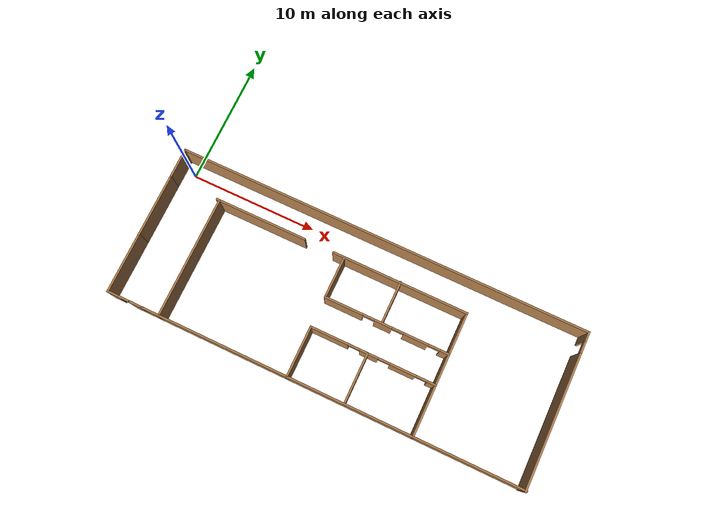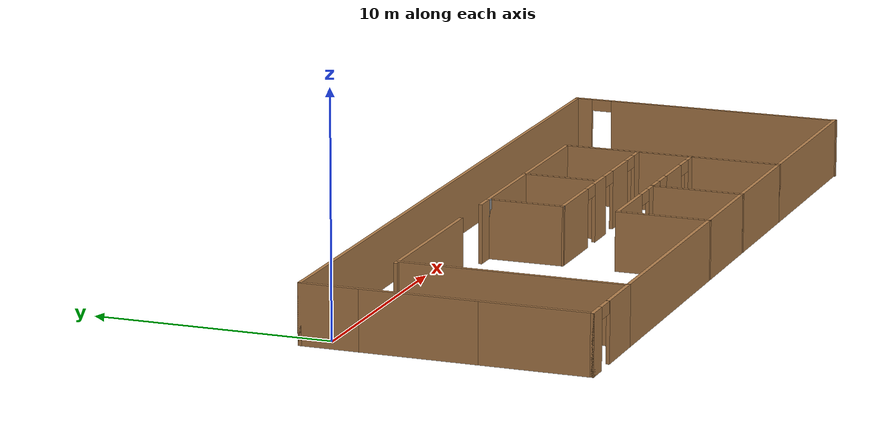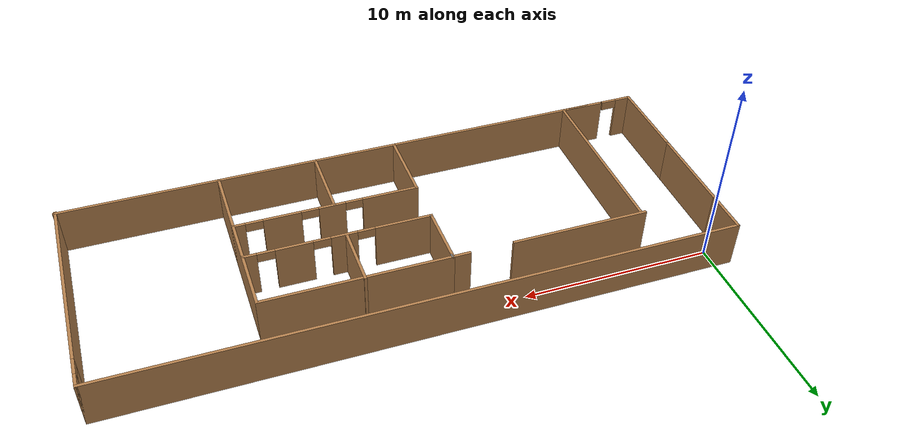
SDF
<?xml version='1.0'?>
<sdf version='1.7'>
  <model name='restaurant'>
    <pose>15.2138 -4.96934 0 0 -0 0</pose>
    <link name='Wall_100'>
      <collision name='Wall_100_Collision'>
        <geometry>
          <box>
            <size>32.25 0.15 2.5</size>
          </box>
        </geometry>
        <pose>0 0 1.25 0 -0 0</pose>
      </collision>
      <visual name='Wall_100_Visual'>
        <pose>0 0 1.25 0 -0 0</pose>
        <geometry>
          <box>
            <size>32.25 0.15 2.5</size>
          </box>
        </geometry>
        <material>
          <script>
            <uri>file://media/materials/scripts/gazebo.material</uri>
            <name>Gazebo/Wood</name>
          </script>
          <ambient>1 1 1 1</ambient>
        </material>
        <meta>
          <layer>0</layer>
        </meta>
      </visual>
      <pose>-0.024999 5.925 0 0 -0 0</pose>
    </link>
    <link name='Wall_101'>
      <pose>16.025 -0 0 0 -0 -1.5708</pose>
      <visual name='Wall_101_Visual_0'>
        <pose>-5.61096 0 1.25 0 -0 0</pose>
        <geometry>
          <box>
            <size>0.77808 0.15 2.5</size>
          </box>
        </geometry>
        <material>
          <script>
            <uri>file://media/materials/scripts/gazebo.material</uri>
            <name>Gazebo/Wood</name>
          </script>
          <ambient>1 1 1 1</ambient>
        </material>
        <meta>
          <layer>0</layer>
        </meta>
      </visual>
      <collision name='Wall_101_Collision_0'>
        <geometry>
          <box>
            <size>0.77808 0.15 2.5</size>
          </box>
        </geometry>
        <pose>-5.61096 0 1.25 0 -0 0</pose>
      </collision>
      <visual name='Wall_101_Visual_1'>
        <pose>0.83904 0 1.25 0 -0 0</pose>
        <geometry>
          <box>
            <size>10.3219 0.15 2.5</size>
          </box>
        </geometry>
        <material>
          <script>
            <uri>file://media/materials/scripts/gazebo.material</uri>
            <name>Gazebo/Wood</name>
          </script>
          <ambient>1 1 1 1</ambient>
        </material>
        <meta>
          <layer>0</layer>
        </meta>
      </visual>
      <collision name='Wall_101_Collision_1'>
        <geometry>
          <box>
            <size>10.3219 0.15 2.5</size>
          </box>
        </geometry>
        <pose>0.83904 0 1.25 0 -0 0</pose>
      </collision>
      <visual name='Wall_101_Visual_2'>
        <pose>-4.77192 0 2.25 0 -0 0</pose>
        <geometry>
          <box>
            <size>0.9 0.15 0.5</size>
          </box>
        </geometry>
        <material>
          <script>
            <uri>file://media/materials/scripts/gazebo.material</uri>
            <name>Gazebo/Wood</name>
          </script>
          <ambient>1 1 1 1</ambient>
        </material>
        <meta>
          <layer>0</layer>
        </meta>
      </visual>
      <collision name='Wall_101_Collision_2'>
        <geometry>
          <box>
            <size>0.9 0.15 0.5</size>
          </box>
        </geometry>
        <pose>-4.77192 0 2.25 0 -0 0</pose>
      </collision>
    </link>
    <link name='Wall_17'>
      <collision name='Wall_17_Collision'>
        <geometry>
          <box>
            <size>2.5 0.15 2.5</size>
          </box>
        </geometry>
        <pose>0 0 1.25 0 -0 0</pose>
      </collision>
      <visual name='Wall_17_Visual'>
        <pose>0 0 1.25 0 -0 0</pose>
        <geometry>
          <box>
            <size>2.5 0.15 2.5</size>
          </box>
        </geometry>
        <material>
          <script>
            <uri>file://media/materials/scripts/gazebo.material</uri>
            <name>Gazebo/Wood</name>
          </script>
          <ambient>1 1 1 1</ambient>
        </material>
        <meta>
          <layer>0</layer>
        </meta>
      </visual>
      <pose>-16.075 4.75 0 0 -0 -1.5708</pose>
    </link>
    <link name='Wall_23'>
      <collision name='Wall_23_Collision'>
        <geometry>
          <box>
            <size>5 0.15 2.5</size>
          </box>
        </geometry>
        <pose>0 0 1.25 0 -0 0</pose>
      </collision>
      <visual name='Wall_23_Visual'>
        <pose>0 0 1.25 0 -0 0</pose>
        <geometry>
          <box>
            <size>5 0.15 2.5</size>
          </box>
        </geometry>
        <material>
          <script>
            <uri>file://media/materials/scripts/gazebo.material</uri>
            <name>Gazebo/Wood</name>
          </script>
          <ambient>1 1 1 1</ambient>
        </material>
        <meta>
          <layer>0</layer>
        </meta>
      </visual>
      <pose>-16.075 1.15 0 0 -0 -1.5708</pose>
    </link>
    <link name='Wall_25'>
      <collision name='Wall_25_Collision'>
        <geometry>
          <box>
            <size>4.75 0.15 2.5</size>
          </box>
        </geometry>
        <pose>0 0 1.25 0 -0 0</pose>
      </collision>
      <visual name='Wall_25_Visual'>
        <pose>0 0 1.25 0 -0 0</pose>
        <geometry>
          <box>
            <size>4.75 0.15 2.5</size>
          </box>
        </geometry>
        <material>
          <script>
            <uri>file://media/materials/scripts/gazebo.material</uri>
            <name>Gazebo/Wood</name>
          </script>
          <ambient>1 1 1 1</ambient>
        </material>
        <meta>
          <layer>0</layer>
        </meta>
      </visual>
      <pose>-16.075 -3.575 0 0 -0 -1.5708</pose>
    </link>
    <link name='Wall_27'>
      <pose>-14.025 -5.875 0 0 -0 0</pose>
      <visual name='Wall_27_Visual_0'>
        <pose>-1.66236 0 1.25 0 -0 0</pose>
        <geometry>
          <box>
            <size>0.925291 0.15 2.5</size>
          </box>
        </geometry>
        <material>
          <script>
            <uri>file://media/materials/scripts/gazebo.material</uri>
            <name>Gazebo/Wood</name>
          </script>
          <ambient>1 1 1 1</ambient>
        </material>
        <meta>
          <layer>0</layer>
        </meta>
      </visual>
      <collision name='Wall_27_Collision_0'>
        <geometry>
          <box>
            <size>0.925291 0.15 2.5</size>
          </box>
        </geometry>
        <pose>-1.66236 0 1.25 0 -0 0</pose>
      </collision>
      <visual name='Wall_27_Visual_1'>
        <pose>0.912645 0 1.25 0 -0 0</pose>
        <geometry>
          <box>
            <size>2.42471 0.15 2.5</size>
          </box>
        </geometry>
        <material>
          <script>
            <uri>file://media/materials/scripts/gazebo.material</uri>
            <name>Gazebo/Wood</name>
          </script>
          <ambient>1 1 1 1</ambient>
        </material>
        <meta>
          <layer>0</layer>
        </meta>
      </visual>
      <collision name='Wall_27_Collision_1'>
        <geometry>
          <box>
            <size>2.42471 0.15 2.5</size>
          </box>
        </geometry>
        <pose>0.912645 0 1.25 0 -0 0</pose>
      </collision>
      <visual name='Wall_27_Visual_2'>
        <pose>1.33783 0 1.25 0 -0 0</pose>
        <geometry>
          <box>
            <size>1.57435 0.15 2.5</size>
          </box>
        </geometry>
        <material>
          <script>
            <uri>file://media/materials/scripts/gazebo.material</uri>
            <name>Gazebo/Wood</name>
          </script>
          <ambient>1 1 1 1</ambient>
        </material>
        <meta>
          <layer>0</layer>
        </meta>
      </visual>
      <collision name='Wall_27_Collision_2'>
        <geometry>
          <box>
            <size>1.57435 0.15 2.5</size>
          </box>
        </geometry>
        <pose>1.33783 0 1.25 0 -0 0</pose>
      </collision>
      <visual name='Wall_27_Visual_3'>
        <pose>-0.774528 0 2.25 0 -0 0</pose>
        <geometry>
          <box>
            <size>0.850362 0.15 0.5</size>
          </box>
        </geometry>
        <material>
          <script>
            <uri>file://media/materials/scripts/gazebo.material</uri>
            <name>Gazebo/Wood</name>
          </script>
          <ambient>1 1 1 1</ambient>
        </material>
        <meta>
          <layer>0</layer>
        </meta>
      </visual>
      <collision name='Wall_27_Collision_3'>
        <geometry>
          <box>
            <size>0.850362 0.15 0.5</size>
          </box>
        </geometry>
        <pose>-0.774528 0 2.25 0 -0 0</pose>
      </collision>
    </link>
    <link name='Wall_28'>
      <collision name='Wall_28_Collision'>
        <geometry>
          <box>
            <size>9.5 0.15 2.5</size>
          </box>
        </geometry>
        <pose>0 0 1.25 0 -0 0</pose>
      </collision>
      <visual name='Wall_28_Visual'>
        <pose>0 0 1.25 0 -0 0</pose>
        <geometry>
          <box>
            <size>9.5 0.15 2.5</size>
          </box>
        </geometry>
        <material>
          <script>
            <uri>file://media/materials/scripts/gazebo.material</uri>
            <name>Gazebo/Wood</name>
          </script>
          <ambient>1 1 1 1</ambient>
        </material>
        <meta>
          <layer>0</layer>
        </meta>
      </visual>
      <pose>-11.975 -1.2 0 0 -0 1.5708</pose>
    </link>
    <link name='Wall_30'>
      <collision name='Wall_30_Collision'>
        <geometry>
          <box>
            <size>10.25 0.15 2.5</size>
          </box>
        </geometry>
        <pose>0 0 1.25 0 -0 0</pose>
      </collision>
      <visual name='Wall_30_Visual'>
        <pose>0 0 1.25 0 -0 0</pose>
        <geometry>
          <box>
            <size>10.25 0.15 2.5</size>
          </box>
        </geometry>
        <material>
          <script>
            <uri>file://media/materials/scripts/gazebo.material</uri>
            <name>Gazebo/Wood</name>
          </script>
          <ambient>1 1 1 1</ambient>
        </material>
        <meta>
          <layer>0</layer>
        </meta>
      </visual>
      <pose>-6.925 -5.875 0 0 -0 0</pose>
    </link>
    <link name='Wall_31'>
      <collision name='Wall_31_Collision'>
        <geometry>
          <box>
            <size>4 0.15 2.5</size>
          </box>
        </geometry>
        <pose>0 0 1.25 0 -0 0</pose>
      </collision>
      <visual name='Wall_31_Visual'>
        <pose>0 0 1.25 0 -0 0</pose>
        <geometry>
          <box>
            <size>4 0.15 2.5</size>
          </box>
        </geometry>
        <material>
          <script>
            <uri>file://media/materials/scripts/gazebo.material</uri>
            <name>Gazebo/Wood</name>
          </script>
          <ambient>1 1 1 1</ambient>
        </material>
        <meta>
          <layer>0</layer>
        </meta>
      </visual>
      <pose>-1.875 -3.95 0 0 -0 1.5708</pose>
    </link>
    <link name='Wall_33'>
      <collision name='Wall_33_Collision'>
        <geometry>
          <box>
            <size>0.15 0.15 2.5</size>
          </box>
        </geometry>
        <pose>0 0 1.25 0 -0 0</pose>
      </collision>
      <visual name='Wall_33_Visual'>
        <pose>0 0 1.25 0 -0 0</pose>
        <geometry>
          <box>
            <size>0.15 0.15 2.5</size>
          </box>
        </geometry>
        <material>
          <script>
            <uri>file://media/materials/scripts/gazebo.material</uri>
            <name>Gazebo/Grey</name>
          </script>
          <ambient>1 1 1 1</ambient>
        </material>
        <meta>
          <layer>0</layer>
        </meta>
      </visual>
      <pose>-1.875 0.325 0 0 -0 0</pose>
    </link>
    <link name='Wall_34'>
      <collision name='Wall_34_Collision'>
        <geometry>
          <box>
            <size>3.25 0.15 2.5</size>
          </box>
        </geometry>
        <pose>0 0 1.25 0 -0 0</pose>
      </collision>
      <visual name='Wall_34_Visual'>
        <pose>0 0 1.25 0 -0 0</pose>
        <geometry>
          <box>
            <size>3.25 0.15 2.5</size>
          </box>
        </geometry>
        <material>
          <script>
            <uri>file://media/materials/scripts/gazebo.material</uri>
            <name>Gazebo/Wood</name>
          </script>
          <ambient>1 1 1 1</ambient>
        </material>
        <meta>
          <layer>0</layer>
        </meta>
      </visual>
      <pose>-1.875 1.875 0 0 -0 1.5708</pose>
    </link>
    <link name='Wall_35'>
      <collision name='Wall_35_Collision'>
        <geometry>
          <box>
            <size>0.25 0.15 2.5</size>
          </box>
        </geometry>
        <pose>0 0 1.25 0 -0 0</pose>
      </collision>
      <visual name='Wall_35_Visual'>
        <pose>0 0 1.25 0 -0 0</pose>
        <geometry>
          <box>
            <size>0.25 0.15 2.5</size>
          </box>
        </geometry>
        <material>
          <script>
            <uri>file://media/materials/scripts/gazebo.material</uri>
            <name>Gazebo/Grey</name>
          </script>
          <ambient>1 1 1 1</ambient>
        </material>
        <meta>
          <layer>0</layer>
        </meta>
      </visual>
      <pose>-1.875 3.475 0 0 -0 1.5708</pose>
    </link>
    <link name='Wall_36'>
      <collision name='Wall_36_Collision'>
        <geometry>
          <box>
            <size>1 0.15 2.5</size>
          </box>
        </geometry>
        <pose>0 0 1.25 0 -0 0</pose>
      </collision>
      <visual name='Wall_36_Visual'>
        <pose>0 0 1.25 0 -0 0</pose>
        <geometry>
          <box>
            <size>1 0.15 2.5</size>
          </box>
        </geometry>
        <material>
          <script>
            <uri>file://media/materials/scripts/gazebo.material</uri>
            <name>Gazebo/Wood</name>
          </script>
          <ambient>1 1 1 1</ambient>
        </material>
        <meta>
          <layer>0</layer>
        </meta>
      </visual>
      <pose>-2.3 3.525 0 0 -0 3.14159</pose>
    </link>
    <link name='Wall_41'>
      <collision name='Wall_41_Collision'>
        <geometry>
          <box>
            <size>7.25 0.15 2.5</size>
          </box>
        </geometry>
        <pose>0 0 1.25 0 -0 0</pose>
      </collision>
      <visual name='Wall_41_Visual'>
        <pose>0 0 1.25 0 -0 0</pose>
        <geometry>
          <box>
            <size>7.25 0.15 2.5</size>
          </box>
        </geometry>
        <material>
          <script>
            <uri>file://media/materials/scripts/gazebo.material</uri>
            <name>Gazebo/Wood</name>
          </script>
          <ambient>1 1 1 1</ambient>
        </material>
        <meta>
          <layer>0</layer>
        </meta>
      </visual>
      <pose>-8.625 3.525 0 0 -0 3.14159</pose>
    </link>
    <link name='Wall_82'>
      <collision name='Wall_82_Collision'>
        <geometry>
          <box>
            <size>9.75 0.15 2.5</size>
          </box>
        </geometry>
        <pose>0 0 1.25 0 -0 0</pose>
      </collision>
      <visual name='Wall_82_Visual'>
        <pose>0 0 1.25 0 -0 0</pose>
        <geometry>
          <box>
            <size>9.75 0.15 2.5</size>
          </box>
        </geometry>
        <material>
          <script>
            <uri>file://media/materials/scripts/gazebo.material</uri>
            <name>Gazebo/Wood</name>
          </script>
          <ambient>1 1 1 1</ambient>
        </material>
        <meta>
          <layer>0</layer>
        </meta>
      </visual>
      <pose>2.925 -5.875 0 0 -0 0</pose>
    </link>
    <link name='Wall_84'>
      <collision name='Wall_84_Collision'>
        <geometry>
          <box>
            <size>9.75 0.15 2.5</size>
          </box>
        </geometry>
        <pose>0 0 1.25 0 -0 0</pose>
      </collision>
      <visual name='Wall_84_Visual'>
        <pose>0 0 1.25 0 -0 0</pose>
        <geometry>
          <box>
            <size>9.75 0.15 2.5</size>
          </box>
        </geometry>
        <material>
          <script>
            <uri>file://media/materials/scripts/gazebo.material</uri>
            <name>Gazebo/Wood</name>
          </script>
          <ambient>1 1 1 1</ambient>
        </material>
        <meta>
          <layer>0</layer>
        </meta>
      </visual>
      <pose>2.925 3.525 0 0 -0 0</pose>
    </link>
    <link name='Wall_85'>
      <collision name='Wall_85_Collision'>
        <geometry>
          <box>
            <size>9.55 0.15 2.5</size>
          </box>
        </geometry>
        <pose>0 0 1.25 0 -0 0</pose>
      </collision>
      <visual name='Wall_85_Visual'>
        <pose>0 0 1.25 0 -0 0</pose>
        <geometry>
          <box>
            <size>9.55 0.15 2.5</size>
          </box>
        </geometry>
        <material>
          <script>
            <uri>file://media/materials/scripts/gazebo.material</uri>
            <name>Gazebo/Wood</name>
          </script>
          <ambient>1 1 1 1</ambient>
        </material>
        <meta>
          <layer>0</layer>
        </meta>
      </visual>
      <pose>7.725 -1.175 0 0 -0 -1.5708</pose>
    </link>
    <link name='Wall_87'>
      <pose>2.925 0.325 0 0 -0 0</pose>
      <visual name='Wall_87_Visual_0'>
        <pose>-3.36026 0 1.25 0 -0 0</pose>
        <geometry>
          <box>
            <size>3.02949 0.15 2.5</size>
          </box>
        </geometry>
        <material>
          <script>
            <uri>file://media/materials/scripts/gazebo.material</uri>
            <name>Gazebo/Wood</name>
          </script>
          <ambient>1 1 1 1</ambient>
        </material>
        <meta>
          <layer>0</layer>
        </meta>
      </visual>
      <collision name='Wall_87_Collision_0'>
        <geometry>
          <box>
            <size>3.02949 0.15 2.5</size>
          </box>
        </geometry>
        <pose>-3.36026 0 1.25 0 -0 0</pose>
      </collision>
      <visual name='Wall_87_Visual_1'>
        <pose>-0.26582 0 1.25 0 -0 0</pose>
        <geometry>
          <box>
            <size>1.35939 0.15 2.5</size>
          </box>
        </geometry>
        <material>
          <script>
            <uri>file://media/materials/scripts/gazebo.material</uri>
            <name>Gazebo/Wood</name>
          </script>
          <ambient>1 1 1 1</ambient>
        </material>
        <meta>
          <layer>0</layer>
        </meta>
      </visual>
      <collision name='Wall_87_Collision_1'>
        <geometry>
          <box>
            <size>1.35939 0.15 2.5</size>
          </box>
        </geometry>
        <pose>-0.26582 0 1.25 0 -0 0</pose>
      </collision>
      <visual name='Wall_87_Visual_2'>
        <pose>2.2689 0 1.25 0 -0 0</pose>
        <geometry>
          <box>
            <size>1.91004 0.15 2.5</size>
          </box>
        </geometry>
        <material>
          <script>
            <uri>file://media/materials/scripts/gazebo.material</uri>
            <name>Gazebo/Wood</name>
          </script>
          <ambient>1 1 1 1</ambient>
        </material>
        <meta>
          <layer>0</layer>
        </meta>
      </visual>
      <collision name='Wall_87_Collision_2'>
        <geometry>
          <box>
            <size>1.91004 0.15 2.5</size>
          </box>
        </geometry>
        <pose>2.2689 0 1.25 0 -0 0</pose>
      </collision>
      <visual name='Wall_87_Visual_3'>
        <pose>4.49946 0 1.25 0 -0 0</pose>
        <geometry>
          <box>
            <size>0.751084 0.15 2.5</size>
          </box>
        </geometry>
        <material>
          <script>
            <uri>file://media/materials/scripts/gazebo.material</uri>
            <name>Gazebo/Wood</name>
          </script>
          <ambient>1 1 1 1</ambient>
        </material>
        <meta>
          <layer>0</layer>
        </meta>
      </visual>
      <collision name='Wall_87_Collision_3'>
        <geometry>
          <box>
            <size>0.751084 0.15 2.5</size>
          </box>
        </geometry>
        <pose>4.49946 0 1.25 0 -0 0</pose>
      </collision>
      <visual name='Wall_87_Visual_4'>
        <pose>-1.39551 0 2.25 0 -0 0</pose>
        <geometry>
          <box>
            <size>0.9 0.15 0.5</size>
          </box>
        </geometry>
        <material>
          <script>
            <uri>file://media/materials/scripts/gazebo.material</uri>
            <name>Gazebo/Wood</name>
          </script>
          <ambient>1 1 1 1</ambient>
        </material>
        <meta>
          <layer>0</layer>
        </meta>
      </visual>
      <collision name='Wall_87_Collision_4'>
        <geometry>
          <box>
            <size>0.9 0.15 0.5</size>
          </box>
        </geometry>
        <pose>-1.39551 0 2.25 0 -0 0</pose>
      </collision>
      <visual name='Wall_87_Visual_5'>
        <pose>0.863874 0 2.25 0 -0 0</pose>
        <geometry>
          <box>
            <size>0.9 0.15 0.5</size>
          </box>
        </geometry>
        <material>
          <script>
            <uri>file://media/materials/scripts/gazebo.material</uri>
            <name>Gazebo/Wood</name>
          </script>
          <ambient>1 1 1 1</ambient>
        </material>
        <meta>
          <layer>0</layer>
        </meta>
      </visual>
      <collision name='Wall_87_Collision_5'>
        <geometry>
          <box>
            <size>0.9 0.15 0.5</size>
          </box>
        </geometry>
        <pose>0.863874 0 2.25 0 -0 0</pose>
      </collision>
      <visual name='Wall_87_Visual_6'>
        <pose>3.67392 0 2.25 0 -0 0</pose>
        <geometry>
          <box>
            <size>0.9 0.15 0.5</size>
          </box>
        </geometry>
        <material>
          <script>
            <uri>file://media/materials/scripts/gazebo.material</uri>
            <name>Gazebo/Wood</name>
          </script>
          <ambient>1 1 1 1</ambient>
        </material>
        <meta>
          <layer>0</layer>
        </meta>
      </visual>
      <collision name='Wall_87_Collision_6'>
        <geometry>
          <box>
            <size>0.9 0.15 0.5</size>
          </box>
        </geometry>
        <pose>3.67392 0 2.25 0 -0 0</pose>
      </collision>
    </link>
    <link name='Wall_89'>
      <pose>2.925 -2.025 0 0 -0 0</pose>
      <visual name='Wall_89_Visual_0'>
        <pose>-3.37861 0 1.25 0 -0 0</pose>
        <geometry>
          <box>
            <size>2.99277 0.15 2.5</size>
          </box>
        </geometry>
        <material>
          <script>
            <uri>file://media/materials/scripts/gazebo.material</uri>
            <name>Gazebo/Wood</name>
          </script>
          <ambient>1 1 1 1</ambient>
        </material>
        <meta>
          <layer>0</layer>
        </meta>
      </visual>
      <collision name='Wall_89_Collision_0'>
        <geometry>
          <box>
            <size>2.99277 0.15 2.5</size>
          </box>
        </geometry>
        <pose>-3.37861 0 1.25 0 -0 0</pose>
      </collision>
      <visual name='Wall_89_Visual_1'>
        <pose>-0.278618 0 1.25 0 -0 0</pose>
        <geometry>
          <box>
            <size>1.40722 0.15 2.5</size>
          </box>
        </geometry>
        <material>
          <script>
            <uri>file://media/materials/scripts/gazebo.material</uri>
            <name>Gazebo/Wood</name>
          </script>
          <ambient>1 1 1 1</ambient>
        </material>
        <meta>
          <layer>0</layer>
        </meta>
      </visual>
      <collision name='Wall_89_Collision_1'>
        <geometry>
          <box>
            <size>1.40722 0.15 2.5</size>
          </box>
        </geometry>
        <pose>-0.278618 0 1.25 0 -0 0</pose>
      </collision>
      <visual name='Wall_89_Visual_2'>
        <pose>2.31228 0 1.25 0 -0 0</pose>
        <geometry>
          <box>
            <size>1.97457 0.15 2.5</size>
          </box>
        </geometry>
        <material>
          <script>
            <uri>file://media/materials/scripts/gazebo.material</uri>
            <name>Gazebo/Wood</name>
          </script>
          <ambient>1 1 1 1</ambient>
        </material>
        <meta>
          <layer>0</layer>
        </meta>
      </visual>
      <collision name='Wall_89_Collision_2'>
        <geometry>
          <box>
            <size>1.97457 0.15 2.5</size>
          </box>
        </geometry>
        <pose>2.31228 0 1.25 0 -0 0</pose>
      </collision>
      <visual name='Wall_89_Visual_3'>
        <pose>4.53728 0 1.25 0 -0 0</pose>
        <geometry>
          <box>
            <size>0.675437 0.15 2.5</size>
          </box>
        </geometry>
        <material>
          <script>
            <uri>file://media/materials/scripts/gazebo.material</uri>
            <name>Gazebo/Wood</name>
          </script>
          <ambient>1 1 1 1</ambient>
        </material>
        <meta>
          <layer>0</layer>
        </meta>
      </visual>
      <collision name='Wall_89_Collision_3'>
        <geometry>
          <box>
            <size>0.675437 0.15 2.5</size>
          </box>
        </geometry>
        <pose>4.53728 0 1.25 0 -0 0</pose>
      </collision>
      <visual name='Wall_89_Visual_4'>
        <pose>-1.43223 0 2.25 0 -0 0</pose>
        <geometry>
          <box>
            <size>0.9 0.15 0.5</size>
          </box>
        </geometry>
        <material>
          <script>
            <uri>file://media/materials/scripts/gazebo.material</uri>
            <name>Gazebo/Wood</name>
          </script>
          <ambient>1 1 1 1</ambient>
        </material>
        <meta>
          <layer>0</layer>
        </meta>
      </visual>
      <collision name='Wall_89_Collision_4'>
        <geometry>
          <box>
            <size>0.9 0.15 0.5</size>
          </box>
        </geometry>
        <pose>-1.43223 0 2.25 0 -0 0</pose>
      </collision>
      <visual name='Wall_89_Visual_5'>
        <pose>0.874992 0 2.25 0 -0 0</pose>
        <geometry>
          <box>
            <size>0.9 0.15 0.5</size>
          </box>
        </geometry>
        <material>
          <script>
            <uri>file://media/materials/scripts/gazebo.material</uri>
            <name>Gazebo/Wood</name>
          </script>
          <ambient>1 1 1 1</ambient>
        </material>
        <meta>
          <layer>0</layer>
        </meta>
      </visual>
      <collision name='Wall_89_Collision_5'>
        <geometry>
          <box>
            <size>0.9 0.15 0.5</size>
          </box>
        </geometry>
        <pose>0.874992 0 2.25 0 -0 0</pose>
      </collision>
      <visual name='Wall_89_Visual_6'>
        <pose>3.74956 0 2.25 0 -0 0</pose>
        <geometry>
          <box>
            <size>0.9 0.15 0.5</size>
          </box>
        </geometry>
        <material>
          <script>
            <uri>file://media/materials/scripts/gazebo.material</uri>
            <name>Gazebo/Wood</name>
          </script>
          <ambient>1 1 1 1</ambient>
        </material>
        <meta>
          <layer>0</layer>
        </meta>
      </visual>
      <collision name='Wall_89_Collision_6'>
        <geometry>
          <box>
            <size>0.9 0.15 0.5</size>
          </box>
        </geometry>
        <pose>3.74956 0 2.25 0 -0 0</pose>
      </collision>
    </link>
    <link name='Wall_94'>
      <collision name='Wall_94_Collision'>
        <geometry>
          <box>
            <size>3.25 0.15 2.5</size>
          </box>
        </geometry>
        <pose>0 0 1.25 0 -0 0</pose>
      </collision>
      <visual name='Wall_94_Visual'>
        <pose>0 0 1.25 0 -0 0</pose>
        <geometry>
          <box>
            <size>3.25 0.15 2.5</size>
          </box>
        </geometry>
        <material>
          <script>
            <uri>file://media/materials/scripts/gazebo.material</uri>
            <name>Gazebo/Wood</name>
          </script>
          <ambient>1 1 1 1</ambient>
        </material>
        <meta>
          <layer>0</layer>
        </meta>
      </visual>
      <pose>2.54208 2.01323 0 0 -0 -1.5708</pose>
    </link>
    <link name='Wall_96'>
      <collision name='Wall_96_Collision'>
        <geometry>
          <box>
            <size>4 0.15 2.5</size>
          </box>
        </geometry>
        <pose>0 0 1.25 0 -0 0</pose>
      </collision>
      <visual name='Wall_96_Visual'>
        <pose>0 0 1.25 0 -0 0</pose>
        <geometry>
          <box>
            <size>4 0.15 2.5</size>
          </box>
        </geometry>
        <material>
          <script>
            <uri>file://media/materials/scripts/gazebo.material</uri>
            <name>Gazebo/Wood</name>
          </script>
          <ambient>1 1 1 1</ambient>
        </material>
        <meta>
          <layer>0</layer>
        </meta>
      </visual>
      <pose>2.5286 -3.95218 0 0 -0 -1.5708</pose>
    </link>
    <link name='Wall_98'>
      <collision name='Wall_98_Collision'>
        <geometry>
          <box>
            <size>8.5 0.15 2.5</size>
          </box>
        </geometry>
        <pose>0 0 1.25 0 -0 0</pose>
      </collision>
      <visual name='Wall_98_Visual'>
        <pose>0 0 1.25 0 -0 0</pose>
        <geometry>
          <box>
            <size>8.5 0.15 2.5</size>
          </box>
        </geometry>
        <material>
          <script>
            <uri>file://media/materials/scripts/gazebo.material</uri>
            <name>Gazebo/Wood</name>
          </script>
          <ambient>1 1 1 1</ambient>
        </material>
        <meta>
          <layer>0</layer>
        </meta>
      </visual>
      <pose>11.9 -5.875 0 0 -0 0</pose>
    </link>
    <static>1</static>
  </model>
</sdf>
